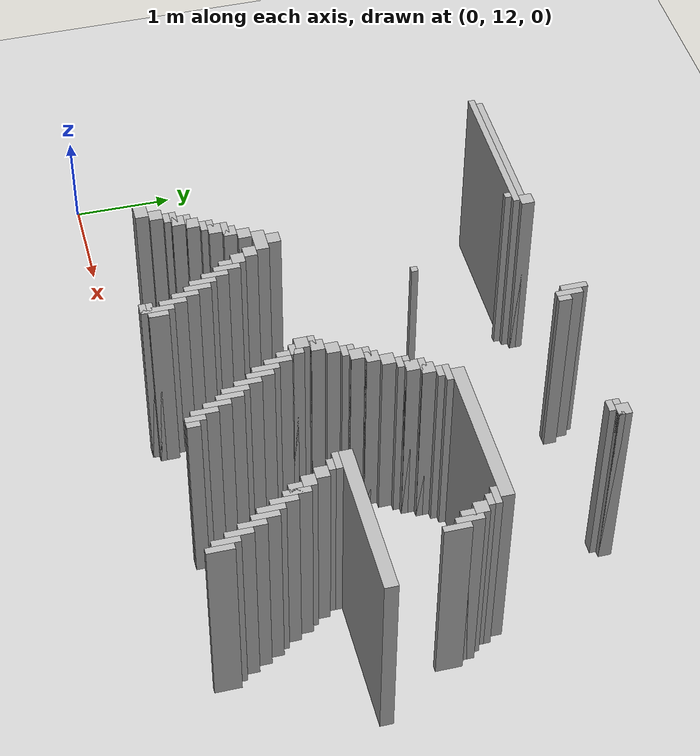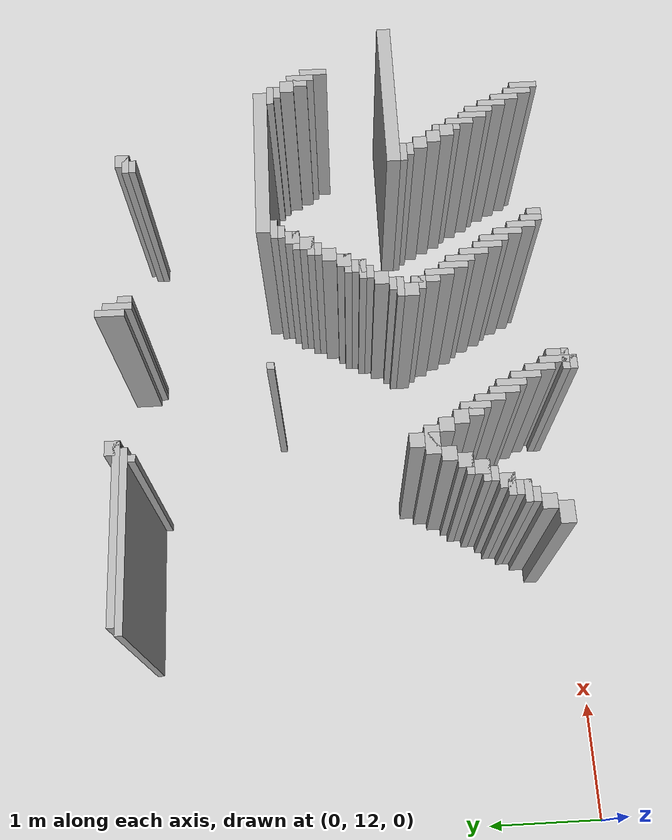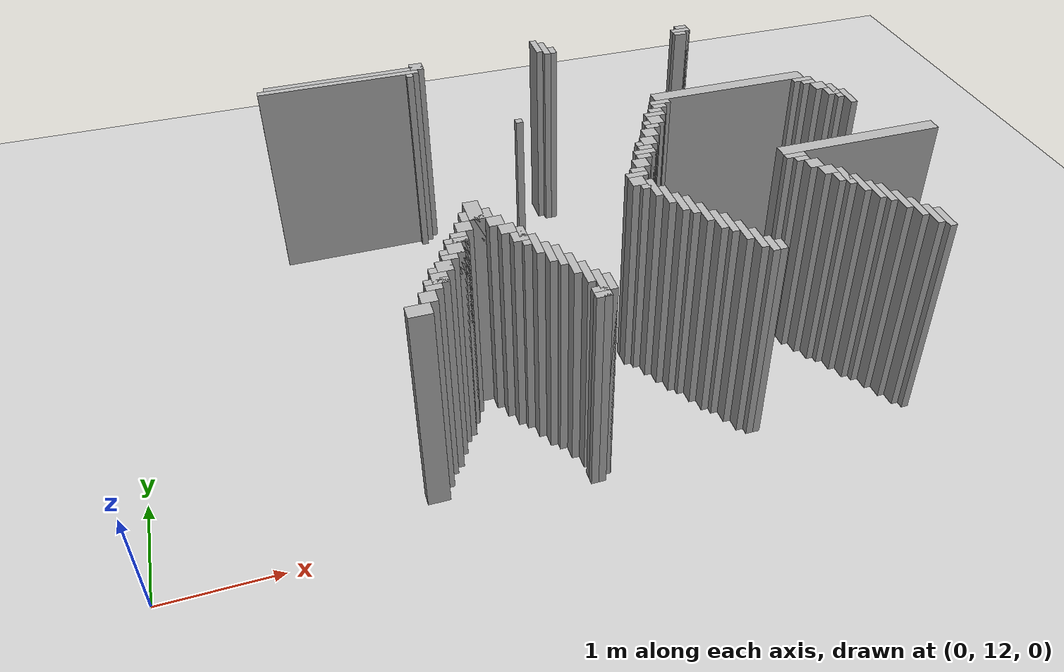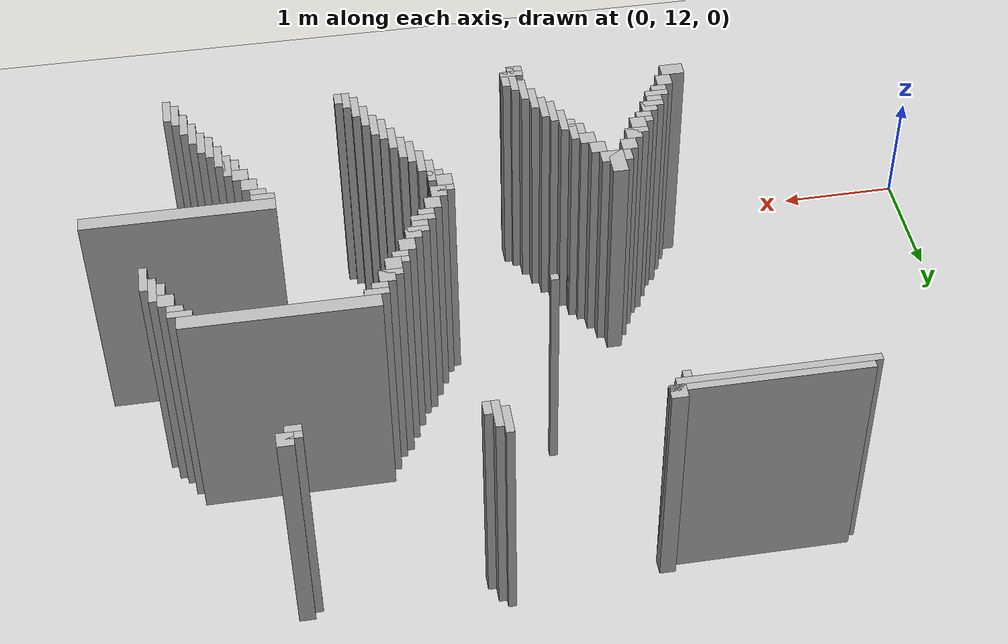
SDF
<sdf version="1.6">
 <world name="slam_world">
  <model name="ground_plane">
   <static>true</static>
   <link name="link">
    <collision name="collision">
     <geometry><plane><normal>0 0 1</normal><size>100 100</size></plane></geometry>
    </collision>
    <visual name="visual">
     <geometry><plane><normal>0 0 1</normal><size>100 100</size></plane></geometry>
     <material>
      <ambient>0.8 0.8 0.8 1</ambient>
      <diffuse>0.8 0.8 0.8 1</diffuse>
      <specular>0.8 0.8 0.8 1</specular>
     </material>
    </visual>
   </link>
  </model>
  <model name="wall_827">
   <static>true</static>
   <pose>4.24468085106383 16.085106382978722 1.0 0 0 0</pose>
   <link name="link">
    <collision name="collision">
     <geometry><box><size>0.06382978723404255 0.2553191489361702 2.0</size></box></geometry>
    </collision>
    <visual name="visual">
     <geometry><box><size>0.06382978723404255 0.2553191489361702 2.0</size></box></geometry>
     <material><ambient>0.5 0.5 0.5 1</ambient><diffuse>0.7 0.7 0.7 1</diffuse></material>
    </visual>
   </link>
  </model>
  <model name="wall_837">
   <static>true</static>
   <pose>4.308510638297872 16.02127659574468 1.0 0 0 0</pose>
   <link name="link">
    <collision name="collision">
     <geometry><box><size>0.06382978723404255 0.2553191489361702 2.0</size></box></geometry>
    </collision>
    <visual name="visual">
     <geometry><box><size>0.06382978723404255 0.2553191489361702 2.0</size></box></geometry>
     <material><ambient>0.5 0.5 0.5 1</ambient><diffuse>0.7 0.7 0.7 1</diffuse></material>
    </visual>
   </link>
  </model>
  <model name="wall_844">
   <static>true</static>
   <pose>2.9999999999999996 16.02127659574468 1.0 0 0 0</pose>
   <link name="link">
    <collision name="collision">
     <geometry><box><size>0.1276595744680851 0.1276595744680851 2.0</size></box></geometry>
    </collision>
    <visual name="visual">
     <geometry><box><size>0.1276595744680851 0.1276595744680851 2.0</size></box></geometry>
     <material><ambient>0.5 0.5 0.5 1</ambient><diffuse>0.7 0.7 0.7 1</diffuse></material>
    </visual>
   </link>
  </model>
  <model name="wall_845">
   <static>true</static>
   <pose>5.8085106382978715 16.02127659574468 1.0 0 0 0</pose>
   <link name="link">
    <collision name="collision">
     <geometry><box><size>0.1276595744680851 0.1276595744680851 2.0</size></box></geometry>
    </collision>
    <visual name="visual">
     <geometry><box><size>0.1276595744680851 0.1276595744680851 2.0</size></box></geometry>
     <material><ambient>0.5 0.5 0.5 1</ambient><diffuse>0.7 0.7 0.7 1</diffuse></material>
    </visual>
   </link>
  </model>
  <model name="wall_851">
   <static>true</static>
   <pose>2.2978723404255317 15.989361702127658 1.0 0 0 0</pose>
   <link name="link">
    <collision name="collision">
     <geometry><box><size>1.5319148936170213 0.06382978723404255 2.0</size></box></geometry>
    </collision>
    <visual name="visual">
     <geometry><box><size>1.5319148936170213 0.06382978723404255 2.0</size></box></geometry>
     <material><ambient>0.5 0.5 0.5 1</ambient><diffuse>0.7 0.7 0.7 1</diffuse></material>
    </visual>
   </link>
  </model>
  <model name="wall_852">
   <static>true</static>
   <pose>4.372340425531915 15.957446808510637 1.0 0 0 0</pose>
   <link name="link">
    <collision name="collision">
     <geometry><box><size>0.06382978723404255 0.1276595744680851 2.0</size></box></geometry>
    </collision>
    <visual name="visual">
     <geometry><box><size>0.06382978723404255 0.1276595744680851 2.0</size></box></geometry>
     <material><ambient>0.5 0.5 0.5 1</ambient><diffuse>0.7 0.7 0.7 1</diffuse></material>
    </visual>
   </link>
  </model>
  <model name="wall_853">
   <static>true</static>
   <pose>5.776595744680851 15.989361702127658 1.0 0 0 0</pose>
   <link name="link">
    <collision name="collision">
     <geometry><box><size>0.19148936170212766 0.06382978723404255 2.0</size></box></geometry>
    </collision>
    <visual name="visual">
     <geometry><box><size>0.19148936170212766 0.06382978723404255 2.0</size></box></geometry>
     <material><ambient>0.5 0.5 0.5 1</ambient><diffuse>0.7 0.7 0.7 1</diffuse></material>
    </visual>
   </link>
  </model>
  <model name="wall_858">
   <static>true</static>
   <pose>2.234042553191489 15.925531914893616 1.0 0 0 0</pose>
   <link name="link">
    <collision name="collision">
     <geometry><box><size>1.5319148936170213 0.06382978723404255 2.0</size></box></geometry>
    </collision>
    <visual name="visual">
     <geometry><box><size>1.5319148936170213 0.06382978723404255 2.0</size></box></geometry>
     <material><ambient>0.5 0.5 0.5 1</ambient><diffuse>0.7 0.7 0.7 1</diffuse></material>
    </visual>
   </link>
  </model>
  <model name="wall_859">
   <static>true</static>
   <pose>5.744680851063829 15.925531914893616 1.0 0 0 0</pose>
   <link name="link">
    <collision name="collision">
     <geometry><box><size>0.1276595744680851 0.06382978723404255 2.0</size></box></geometry>
    </collision>
    <visual name="visual">
     <geometry><box><size>0.1276595744680851 0.06382978723404255 2.0</size></box></geometry>
     <material><ambient>0.5 0.5 0.5 1</ambient><diffuse>0.7 0.7 0.7 1</diffuse></material>
    </visual>
   </link>
  </model>
  <model name="wall_865">
   <static>true</static>
   <pose>2.9042553191489358 15.861702127659573 1.0 0 0 0</pose>
   <link name="link">
    <collision name="collision">
     <geometry><box><size>0.06382978723404255 0.06382978723404255 2.0</size></box></geometry>
    </collision>
    <visual name="visual">
     <geometry><box><size>0.06382978723404255 0.06382978723404255 2.0</size></box></geometry>
     <material><ambient>0.5 0.5 0.5 1</ambient><diffuse>0.7 0.7 0.7 1</diffuse></material>
    </visual>
   </link>
  </model>
  <model name="wall_902">
   <static>true</static>
   <pose>5.744680851063829 14.744680851063828 1.0 0 0 0</pose>
   <link name="link">
    <collision name="collision">
     <geometry><box><size>1.5319148936170213 0.1276595744680851 2.0</size></box></geometry>
    </collision>
    <visual name="visual">
     <geometry><box><size>1.5319148936170213 0.1276595744680851 2.0</size></box></geometry>
     <material><ambient>0.5 0.5 0.5 1</ambient><diffuse>0.7 0.7 0.7 1</diffuse></material>
    </visual>
   </link>
  </model>
  <model name="wall_906">
   <static>true</static>
   <pose>3.6702127659574466 14.712765957446807 1.0 0 0 0</pose>
   <link name="link">
    <collision name="collision">
     <geometry><box><size>0.06382978723404255 0.06382978723404255 2.0</size></box></geometry>
    </collision>
    <visual name="visual">
     <geometry><box><size>0.06382978723404255 0.06382978723404255 2.0</size></box></geometry>
     <material><ambient>0.5 0.5 0.5 1</ambient><diffuse>0.7 0.7 0.7 1</diffuse></material>
    </visual>
   </link>
  </model>
  <model name="wall_909">
   <static>true</static>
   <pose>5.01063829787234 14.648936170212766 1.0 0 0 0</pose>
   <link name="link">
    <collision name="collision">
     <geometry><box><size>0.19148936170212766 0.06382978723404255 2.0</size></box></geometry>
    </collision>
    <visual name="visual">
     <geometry><box><size>0.19148936170212766 0.06382978723404255 2.0</size></box></geometry>
     <material><ambient>0.5 0.5 0.5 1</ambient><diffuse>0.7 0.7 0.7 1</diffuse></material>
    </visual>
   </link>
  </model>
  <model name="wall_910">
   <static>true</static>
   <pose>6.478723404255319 14.648936170212766 1.0 0 0 0</pose>
   <link name="link">
    <collision name="collision">
     <geometry><box><size>0.19148936170212766 0.06382978723404255 2.0</size></box></geometry>
    </collision>
    <visual name="visual">
     <geometry><box><size>0.19148936170212766 0.06382978723404255 2.0</size></box></geometry>
     <material><ambient>0.5 0.5 0.5 1</ambient><diffuse>0.7 0.7 0.7 1</diffuse></material>
    </visual>
   </link>
  </model>
  <model name="wall_917">
   <static>true</static>
   <pose>4.978723404255319 14.585106382978722 1.0 0 0 0</pose>
   <link name="link">
    <collision name="collision">
     <geometry><box><size>0.1276595744680851 0.06382978723404255 2.0</size></box></geometry>
    </collision>
    <visual name="visual">
     <geometry><box><size>0.1276595744680851 0.06382978723404255 2.0</size></box></geometry>
     <material><ambient>0.5 0.5 0.5 1</ambient><diffuse>0.7 0.7 0.7 1</diffuse></material>
    </visual>
   </link>
  </model>
  <model name="wall_918">
   <static>true</static>
   <pose>6.51063829787234 14.585106382978722 1.0 0 0 0</pose>
   <link name="link">
    <collision name="collision">
     <geometry><box><size>0.1276595744680851 0.06382978723404255 2.0</size></box></geometry>
    </collision>
    <visual name="visual">
     <geometry><box><size>0.1276595744680851 0.06382978723404255 2.0</size></box></geometry>
     <material><ambient>0.5 0.5 0.5 1</ambient><diffuse>0.7 0.7 0.7 1</diffuse></material>
    </visual>
   </link>
  </model>
  <model name="wall_924">
   <static>true</static>
   <pose>4.914893617021276 14.489361702127658 1.0 0 0 0</pose>
   <link name="link">
    <collision name="collision">
     <geometry><box><size>0.1276595744680851 0.1276595744680851 2.0</size></box></geometry>
    </collision>
    <visual name="visual">
     <geometry><box><size>0.1276595744680851 0.1276595744680851 2.0</size></box></geometry>
     <material><ambient>0.5 0.5 0.5 1</ambient><diffuse>0.7 0.7 0.7 1</diffuse></material>
    </visual>
   </link>
  </model>
  <model name="wall_925">
   <static>true</static>
   <pose>6.574468085106383 14.489361702127658 1.0 0 0 0</pose>
   <link name="link">
    <collision name="collision">
     <geometry><box><size>0.1276595744680851 0.1276595744680851 2.0</size></box></geometry>
    </collision>
    <visual name="visual">
     <geometry><box><size>0.1276595744680851 0.1276595744680851 2.0</size></box></geometry>
     <material><ambient>0.5 0.5 0.5 1</ambient><diffuse>0.7 0.7 0.7 1</diffuse></material>
    </visual>
   </link>
  </model>
  <model name="wall_931">
   <static>true</static>
   <pose>4.882978723404255 14.457446808510637 1.0 0 0 0</pose>
   <link name="link">
    <collision name="collision">
     <geometry><box><size>0.19148936170212766 0.06382978723404255 2.0</size></box></geometry>
    </collision>
    <visual name="visual">
     <geometry><box><size>0.19148936170212766 0.06382978723404255 2.0</size></box></geometry>
     <material><ambient>0.5 0.5 0.5 1</ambient><diffuse>0.7 0.7 0.7 1</diffuse></material>
    </visual>
   </link>
  </model>
  <model name="wall_932">
   <static>true</static>
   <pose>6.670212765957446 14.361702127659573 1.0 0 0 0</pose>
   <link name="link">
    <collision name="collision">
     <geometry><box><size>0.06382978723404255 0.2553191489361702 2.0</size></box></geometry>
    </collision>
    <visual name="visual">
     <geometry><box><size>0.06382978723404255 0.2553191489361702 2.0</size></box></geometry>
     <material><ambient>0.5 0.5 0.5 1</ambient><diffuse>0.7 0.7 0.7 1</diffuse></material>
    </visual>
   </link>
  </model>
  <model name="wall_938">
   <static>true</static>
   <pose>4.8510638297872335 14.361702127659573 1.0 0 0 0</pose>
   <link name="link">
    <collision name="collision">
     <geometry><box><size>0.1276595744680851 0.1276595744680851 2.0</size></box></geometry>
    </collision>
    <visual name="visual">
     <geometry><box><size>0.1276595744680851 0.1276595744680851 2.0</size></box></geometry>
     <material><ambient>0.5 0.5 0.5 1</ambient><diffuse>0.7 0.7 0.7 1</diffuse></material>
    </visual>
   </link>
  </model>
  <model name="wall_939">
   <static>true</static>
   <pose>6.638297872340425 14.361702127659573 1.0 0 0 0</pose>
   <link name="link">
    <collision name="collision">
     <geometry><box><size>0.1276595744680851 0.1276595744680851 2.0</size></box></geometry>
    </collision>
    <visual name="visual">
     <geometry><box><size>0.1276595744680851 0.1276595744680851 2.0</size></box></geometry>
     <material><ambient>0.5 0.5 0.5 1</ambient><diffuse>0.7 0.7 0.7 1</diffuse></material>
    </visual>
   </link>
  </model>
  <model name="wall_945">
   <static>true</static>
   <pose>4.819148936170213 14.329787234042552 1.0 0 0 0</pose>
   <link name="link">
    <collision name="collision">
     <geometry><box><size>0.19148936170212766 0.06382978723404255 2.0</size></box></geometry>
    </collision>
    <visual name="visual">
     <geometry><box><size>0.19148936170212766 0.06382978723404255 2.0</size></box></geometry>
     <material><ambient>0.5 0.5 0.5 1</ambient><diffuse>0.7 0.7 0.7 1</diffuse></material>
    </visual>
   </link>
  </model>
  <model name="wall_946">
   <static>true</static>
   <pose>6.734042553191489 14.234042553191488 1.0 0 0 0</pose>
   <link name="link">
    <collision name="collision">
     <geometry><box><size>0.06382978723404255 0.2553191489361702 2.0</size></box></geometry>
    </collision>
    <visual name="visual">
     <geometry><box><size>0.06382978723404255 0.2553191489361702 2.0</size></box></geometry>
     <material><ambient>0.5 0.5 0.5 1</ambient><diffuse>0.7 0.7 0.7 1</diffuse></material>
    </visual>
   </link>
  </model>
  <model name="wall_952">
   <static>true</static>
   <pose>4.787234042553191 14.265957446808509 1.0 0 0 0</pose>
   <link name="link">
    <collision name="collision">
     <geometry><box><size>0.1276595744680851 0.06382978723404255 2.0</size></box></geometry>
    </collision>
    <visual name="visual">
     <geometry><box><size>0.1276595744680851 0.06382978723404255 2.0</size></box></geometry>
     <material><ambient>0.5 0.5 0.5 1</ambient><diffuse>0.7 0.7 0.7 1</diffuse></material>
    </visual>
   </link>
  </model>
  <model name="wall_956">
   <static>true</static>
   <pose>4.723404255319148 14.170212765957446 1.0 0 0 0</pose>
   <link name="link">
    <collision name="collision">
     <geometry><box><size>0.1276595744680851 0.1276595744680851 2.0</size></box></geometry>
    </collision>
    <visual name="visual">
     <geometry><box><size>0.1276595744680851 0.1276595744680851 2.0</size></box></geometry>
     <material><ambient>0.5 0.5 0.5 1</ambient><diffuse>0.7 0.7 0.7 1</diffuse></material>
    </visual>
   </link>
  </model>
  <model name="wall_963">
   <static>true</static>
   <pose>4.659574468085106 14.042553191489361 1.0 0 0 0</pose>
   <link name="link">
    <collision name="collision">
     <geometry><box><size>0.1276595744680851 0.1276595744680851 2.0</size></box></geometry>
    </collision>
    <visual name="visual">
     <geometry><box><size>0.1276595744680851 0.1276595744680851 2.0</size></box></geometry>
     <material><ambient>0.5 0.5 0.5 1</ambient><diffuse>0.7 0.7 0.7 1</diffuse></material>
    </visual>
   </link>
  </model>
  <model name="wall_970">
   <static>true</static>
   <pose>4.627659574468085 14.010638297872338 1.0 0 0 0</pose>
   <link name="link">
    <collision name="collision">
     <geometry><box><size>0.19148936170212766 0.06382978723404255 2.0</size></box></geometry>
    </collision>
    <visual name="visual">
     <geometry><box><size>0.19148936170212766 0.06382978723404255 2.0</size></box></geometry>
     <material><ambient>0.5 0.5 0.5 1</ambient><diffuse>0.7 0.7 0.7 1</diffuse></material>
    </visual>
   </link>
  </model>
  <model name="wall_977">
   <static>true</static>
   <pose>4.595744680851063 13.914893617021276 1.0 0 0 0</pose>
   <link name="link">
    <collision name="collision">
     <geometry><box><size>0.1276595744680851 0.1276595744680851 2.0</size></box></geometry>
    </collision>
    <visual name="visual">
     <geometry><box><size>0.1276595744680851 0.1276595744680851 2.0</size></box></geometry>
     <material><ambient>0.5 0.5 0.5 1</ambient><diffuse>0.7 0.7 0.7 1</diffuse></material>
    </visual>
   </link>
  </model>
  <model name="wall_981">
   <static>true</static>
   <pose>4.5638297872340425 13.882978723404253 1.0 0 0 0</pose>
   <link name="link">
    <collision name="collision">
     <geometry><box><size>0.19148936170212766 0.06382978723404255 2.0</size></box></geometry>
    </collision>
    <visual name="visual">
     <geometry><box><size>0.19148936170212766 0.06382978723404255 2.0</size></box></geometry>
     <material><ambient>0.5 0.5 0.5 1</ambient><diffuse>0.7 0.7 0.7 1</diffuse></material>
    </visual>
   </link>
  </model>
  <model name="wall_988">
   <static>true</static>
   <pose>4.531914893617021 13.819148936170212 1.0 0 0 0</pose>
   <link name="link">
    <collision name="collision">
     <geometry><box><size>0.1276595744680851 0.06382978723404255 2.0</size></box></geometry>
    </collision>
    <visual name="visual">
     <geometry><box><size>0.1276595744680851 0.06382978723404255 2.0</size></box></geometry>
     <material><ambient>0.5 0.5 0.5 1</ambient><diffuse>0.7 0.7 0.7 1</diffuse></material>
    </visual>
   </link>
  </model>
  <model name="wall_992">
   <static>true</static>
   <pose>4.468085106382978 13.723404255319148 1.0 0 0 0</pose>
   <link name="link">
    <collision name="collision">
     <geometry><box><size>0.1276595744680851 0.1276595744680851 2.0</size></box></geometry>
    </collision>
    <visual name="visual">
     <geometry><box><size>0.1276595744680851 0.1276595744680851 2.0</size></box></geometry>
     <material><ambient>0.5 0.5 0.5 1</ambient><diffuse>0.7 0.7 0.7 1</diffuse></material>
    </visual>
   </link>
  </model>
  <model name="wall_999">
   <static>true</static>
   <pose>4.404255319148936 13.595744680851062 1.0 0 0 0</pose>
   <link name="link">
    <collision name="collision">
     <geometry><box><size>0.1276595744680851 0.1276595744680851 2.0</size></box></geometry>
    </collision>
    <visual name="visual">
     <geometry><box><size>0.1276595744680851 0.1276595744680851 2.0</size></box></geometry>
     <material><ambient>0.5 0.5 0.5 1</ambient><diffuse>0.7 0.7 0.7 1</diffuse></material>
    </visual>
   </link>
  </model>
  <model name="wall_1005">
   <static>true</static>
   <pose>2.936170212765957 13.468085106382977 1.0 0 0 0</pose>
   <link name="link">
    <collision name="collision">
     <geometry><box><size>0.1276595744680851 0.2553191489361702 2.0</size></box></geometry>
    </collision>
    <visual name="visual">
     <geometry><box><size>0.1276595744680851 0.2553191489361702 2.0</size></box></geometry>
     <material><ambient>0.5 0.5 0.5 1</ambient><diffuse>0.7 0.7 0.7 1</diffuse></material>
    </visual>
   </link>
  </model>
  <model name="wall_1006">
   <static>true</static>
   <pose>4.372340425531915 13.563829787234042 1.0 0 0 0</pose>
   <link name="link">
    <collision name="collision">
     <geometry><box><size>0.19148936170212766 0.06382978723404255 2.0</size></box></geometry>
    </collision>
    <visual name="visual">
     <geometry><box><size>0.19148936170212766 0.06382978723404255 2.0</size></box></geometry>
     <material><ambient>0.5 0.5 0.5 1</ambient><diffuse>0.7 0.7 0.7 1</diffuse></material>
    </visual>
   </link>
  </model>
  <model name="wall_1007">
   <static>true</static>
   <pose>6.446808510638298 13.53191489361702 1.0 0 0 0</pose>
   <link name="link">
    <collision name="collision">
     <geometry><box><size>1.5319148936170213 0.1276595744680851 2.0</size></box></geometry>
    </collision>
    <visual name="visual">
     <geometry><box><size>1.5319148936170213 0.1276595744680851 2.0</size></box></geometry>
     <material><ambient>0.5 0.5 0.5 1</ambient><diffuse>0.7 0.7 0.7 1</diffuse></material>
    </visual>
   </link>
  </model>
  <model name="wall_1012">
   <static>true</static>
   <pose>4.340425531914893 13.468085106382977 1.0 0 0 0</pose>
   <link name="link">
    <collision name="collision">
     <geometry><box><size>0.1276595744680851 0.1276595744680851 2.0</size></box></geometry>
    </collision>
    <visual name="visual">
     <geometry><box><size>0.1276595744680851 0.1276595744680851 2.0</size></box></geometry>
     <material><ambient>0.5 0.5 0.5 1</ambient><diffuse>0.7 0.7 0.7 1</diffuse></material>
    </visual>
   </link>
  </model>
  <model name="wall_1019">
   <static>true</static>
   <pose>2.936170212765957 13.404255319148936 1.0 0 0 0</pose>
   <link name="link">
    <collision name="collision">
     <geometry><box><size>0.2553191489361702 0.1276595744680851 2.0</size></box></geometry>
    </collision>
    <visual name="visual">
     <geometry><box><size>0.2553191489361702 0.1276595744680851 2.0</size></box></geometry>
     <material><ambient>0.5 0.5 0.5 1</ambient><diffuse>0.7 0.7 0.7 1</diffuse></material>
    </visual>
   </link>
  </model>
  <model name="wall_1020">
   <static>true</static>
   <pose>4.4361702127659575 13.340425531914892 1.0 0 0 0</pose>
   <link name="link">
    <collision name="collision">
     <geometry><box><size>0.06382978723404255 0.2553191489361702 2.0</size></box></geometry>
    </collision>
    <visual name="visual">
     <geometry><box><size>0.06382978723404255 0.2553191489361702 2.0</size></box></geometry>
     <material><ambient>0.5 0.5 0.5 1</ambient><diffuse>0.7 0.7 0.7 1</diffuse></material>
    </visual>
   </link>
  </model>
  <model name="wall_1021">
   <static>true</static>
   <pose>5.776595744680851 13.436170212765957 1.0 0 0 0</pose>
   <link name="link">
    <collision name="collision">
     <geometry><box><size>0.19148936170212766 0.06382978723404255 2.0</size></box></geometry>
    </collision>
    <visual name="visual">
     <geometry><box><size>0.19148936170212766 0.06382978723404255 2.0</size></box></geometry>
     <material><ambient>0.5 0.5 0.5 1</ambient><diffuse>0.7 0.7 0.7 1</diffuse></material>
    </visual>
   </link>
  </model>
  <model name="wall_1028">
   <static>true</static>
   <pose>4.404255319148936 13.372340425531913 1.0 0 0 0</pose>
   <link name="link">
    <collision name="collision">
     <geometry><box><size>0.1276595744680851 0.06382978723404255 2.0</size></box></geometry>
    </collision>
    <visual name="visual">
     <geometry><box><size>0.1276595744680851 0.06382978723404255 2.0</size></box></geometry>
     <material><ambient>0.5 0.5 0.5 1</ambient><diffuse>0.7 0.7 0.7 1</diffuse></material>
    </visual>
   </link>
  </model>
  <model name="wall_1029">
   <static>true</static>
   <pose>5.8085106382978715 13.372340425531913 1.0 0 0 0</pose>
   <link name="link">
    <collision name="collision">
     <geometry><box><size>0.1276595744680851 0.06382978723404255 2.0</size></box></geometry>
    </collision>
    <visual name="visual">
     <geometry><box><size>0.1276595744680851 0.06382978723404255 2.0</size></box></geometry>
     <material><ambient>0.5 0.5 0.5 1</ambient><diffuse>0.7 0.7 0.7 1</diffuse></material>
    </visual>
   </link>
  </model>
  <model name="wall_1035">
   <static>true</static>
   <pose>2.808510638297872 13.27659574468085 1.0 0 0 0</pose>
   <link name="link">
    <collision name="collision">
     <geometry><box><size>0.1276595744680851 0.1276595744680851 2.0</size></box></geometry>
    </collision>
    <visual name="visual">
     <geometry><box><size>0.1276595744680851 0.1276595744680851 2.0</size></box></geometry>
     <material><ambient>0.5 0.5 0.5 1</ambient><diffuse>0.7 0.7 0.7 1</diffuse></material>
    </visual>
   </link>
  </model>
  <model name="wall_1036">
   <static>true</static>
   <pose>3.0638297872340425 13.27659574468085 1.0 0 0 0</pose>
   <link name="link">
    <collision name="collision">
     <geometry><box><size>0.1276595744680851 0.1276595744680851 2.0</size></box></geometry>
    </collision>
    <visual name="visual">
     <geometry><box><size>0.1276595744680851 0.1276595744680851 2.0</size></box></geometry>
     <material><ambient>0.5 0.5 0.5 1</ambient><diffuse>0.7 0.7 0.7 1</diffuse></material>
    </visual>
   </link>
  </model>
  <model name="wall_1037">
   <static>true</static>
   <pose>4.5 13.212765957446807 1.0 0 0 0</pose>
   <link name="link">
    <collision name="collision">
     <geometry><box><size>0.06382978723404255 0.2553191489361702 2.0</size></box></geometry>
    </collision>
    <visual name="visual">
     <geometry><box><size>0.06382978723404255 0.2553191489361702 2.0</size></box></geometry>
     <material><ambient>0.5 0.5 0.5 1</ambient><diffuse>0.7 0.7 0.7 1</diffuse></material>
    </visual>
   </link>
  </model>
  <model name="wall_1038">
   <static>true</static>
   <pose>5.872340425531914 13.27659574468085 1.0 0 0 0</pose>
   <link name="link">
    <collision name="collision">
     <geometry><box><size>0.1276595744680851 0.1276595744680851 2.0</size></box></geometry>
    </collision>
    <visual name="visual">
     <geometry><box><size>0.1276595744680851 0.1276595744680851 2.0</size></box></geometry>
     <material><ambient>0.5 0.5 0.5 1</ambient><diffuse>0.7 0.7 0.7 1</diffuse></material>
    </visual>
   </link>
  </model>
  <model name="wall_1045">
   <static>true</static>
   <pose>2.7446808510638294 13.148936170212766 1.0 0 0 0</pose>
   <link name="link">
    <collision name="collision">
     <geometry><box><size>0.1276595744680851 0.1276595744680851 2.0</size></box></geometry>
    </collision>
    <visual name="visual">
     <geometry><box><size>0.1276595744680851 0.1276595744680851 2.0</size></box></geometry>
     <material><ambient>0.5 0.5 0.5 1</ambient><diffuse>0.7 0.7 0.7 1</diffuse></material>
    </visual>
   </link>
  </model>
  <model name="wall_1046">
   <static>true</static>
   <pose>3.127659574468085 13.148936170212766 1.0 0 0 0</pose>
   <link name="link">
    <collision name="collision">
     <geometry><box><size>0.1276595744680851 0.1276595744680851 2.0</size></box></geometry>
    </collision>
    <visual name="visual">
     <geometry><box><size>0.1276595744680851 0.1276595744680851 2.0</size></box></geometry>
     <material><ambient>0.5 0.5 0.5 1</ambient><diffuse>0.7 0.7 0.7 1</diffuse></material>
    </visual>
   </link>
  </model>
  <model name="wall_1047">
   <static>true</static>
   <pose>4.5638297872340425 13.085106382978722 1.0 0 0 0</pose>
   <link name="link">
    <collision name="collision">
     <geometry><box><size>0.06382978723404255 0.2553191489361702 2.0</size></box></geometry>
    </collision>
    <visual name="visual">
     <geometry><box><size>0.06382978723404255 0.2553191489361702 2.0</size></box></geometry>
     <material><ambient>0.5 0.5 0.5 1</ambient><diffuse>0.7 0.7 0.7 1</diffuse></material>
    </visual>
   </link>
  </model>
  <model name="wall_1048">
   <static>true</static>
   <pose>5.936170212765957 13.148936170212766 1.0 0 0 0</pose>
   <link name="link">
    <collision name="collision">
     <geometry><box><size>0.1276595744680851 0.1276595744680851 2.0</size></box></geometry>
    </collision>
    <visual name="visual">
     <geometry><box><size>0.1276595744680851 0.1276595744680851 2.0</size></box></geometry>
     <material><ambient>0.5 0.5 0.5 1</ambient><diffuse>0.7 0.7 0.7 1</diffuse></material>
    </visual>
   </link>
  </model>
  <model name="wall_1055">
   <static>true</static>
   <pose>2.712765957446808 13.117021276595743 1.0 0 0 0</pose>
   <link name="link">
    <collision name="collision">
     <geometry><box><size>0.19148936170212766 0.06382978723404255 2.0</size></box></geometry>
    </collision>
    <visual name="visual">
     <geometry><box><size>0.19148936170212766 0.06382978723404255 2.0</size></box></geometry>
     <material><ambient>0.5 0.5 0.5 1</ambient><diffuse>0.7 0.7 0.7 1</diffuse></material>
    </visual>
   </link>
  </model>
  <model name="wall_1056">
   <static>true</static>
   <pose>3.223404255319149 13.02127659574468 1.0 0 0 0</pose>
   <link name="link">
    <collision name="collision">
     <geometry><box><size>0.06382978723404255 0.2553191489361702 2.0</size></box></geometry>
    </collision>
    <visual name="visual">
     <geometry><box><size>0.06382978723404255 0.2553191489361702 2.0</size></box></geometry>
     <material><ambient>0.5 0.5 0.5 1</ambient><diffuse>0.7 0.7 0.7 1</diffuse></material>
    </visual>
   </link>
  </model>
  <model name="wall_1057">
   <static>true</static>
   <pose>4.627659574468085 13.02127659574468 1.0 0 0 0</pose>
   <link name="link">
    <collision name="collision">
     <geometry><box><size>0.06382978723404255 0.2553191489361702 2.0</size></box></geometry>
    </collision>
    <visual name="visual">
     <geometry><box><size>0.06382978723404255 0.2553191489361702 2.0</size></box></geometry>
     <material><ambient>0.5 0.5 0.5 1</ambient><diffuse>0.7 0.7 0.7 1</diffuse></material>
    </visual>
   </link>
  </model>
  <model name="wall_1058">
   <static>true</static>
   <pose>6.031914893617021 13.02127659574468 1.0 0 0 0</pose>
   <link name="link">
    <collision name="collision">
     <geometry><box><size>0.06382978723404255 0.2553191489361702 2.0</size></box></geometry>
    </collision>
    <visual name="visual">
     <geometry><box><size>0.06382978723404255 0.2553191489361702 2.0</size></box></geometry>
     <material><ambient>0.5 0.5 0.5 1</ambient><diffuse>0.7 0.7 0.7 1</diffuse></material>
    </visual>
   </link>
  </model>
  <model name="wall_1063">
   <static>true</static>
   <pose>2.680851063829787 13.02127659574468 1.0 0 0 0</pose>
   <link name="link">
    <collision name="collision">
     <geometry><box><size>0.1276595744680851 0.1276595744680851 2.0</size></box></geometry>
    </collision>
    <visual name="visual">
     <geometry><box><size>0.1276595744680851 0.1276595744680851 2.0</size></box></geometry>
     <material><ambient>0.5 0.5 0.5 1</ambient><diffuse>0.7 0.7 0.7 1</diffuse></material>
    </visual>
   </link>
  </model>
  <model name="wall_1064">
   <static>true</static>
   <pose>3.1914893617021276 13.02127659574468 1.0 0 0 0</pose>
   <link name="link">
    <collision name="collision">
     <geometry><box><size>0.1276595744680851 0.1276595744680851 2.0</size></box></geometry>
    </collision>
    <visual name="visual">
     <geometry><box><size>0.1276595744680851 0.1276595744680851 2.0</size></box></geometry>
     <material><ambient>0.5 0.5 0.5 1</ambient><diffuse>0.7 0.7 0.7 1</diffuse></material>
    </visual>
   </link>
  </model>
  <model name="wall_1065">
   <static>true</static>
   <pose>5.999999999999999 13.02127659574468 1.0 0 0 0</pose>
   <link name="link">
    <collision name="collision">
     <geometry><box><size>0.1276595744680851 0.1276595744680851 2.0</size></box></geometry>
    </collision>
    <visual name="visual">
     <geometry><box><size>0.1276595744680851 0.1276595744680851 2.0</size></box></geometry>
     <material><ambient>0.5 0.5 0.5 1</ambient><diffuse>0.7 0.7 0.7 1</diffuse></material>
    </visual>
   </link>
  </model>
  <model name="wall_1069">
   <static>true</static>
   <pose>2.6489361702127656 12.989361702127658 1.0 0 0 0</pose>
   <link name="link">
    <collision name="collision">
     <geometry><box><size>0.19148936170212766 0.06382978723404255 2.0</size></box></geometry>
    </collision>
    <visual name="visual">
     <geometry><box><size>0.19148936170212766 0.06382978723404255 2.0</size></box></geometry>
     <material><ambient>0.5 0.5 0.5 1</ambient><diffuse>0.7 0.7 0.7 1</diffuse></material>
    </visual>
   </link>
  </model>
  <model name="wall_1070">
   <static>true</static>
   <pose>3.2872340425531914 12.893617021276595 1.0 0 0 0</pose>
   <link name="link">
    <collision name="collision">
     <geometry><box><size>0.06382978723404255 0.2553191489361702 2.0</size></box></geometry>
    </collision>
    <visual name="visual">
     <geometry><box><size>0.06382978723404255 0.2553191489361702 2.0</size></box></geometry>
     <material><ambient>0.5 0.5 0.5 1</ambient><diffuse>0.7 0.7 0.7 1</diffuse></material>
    </visual>
   </link>
  </model>
  <model name="wall_1071">
   <static>true</static>
   <pose>4.691489361702128 12.893617021276595 1.0 0 0 0</pose>
   <link name="link">
    <collision name="collision">
     <geometry><box><size>0.06382978723404255 0.2553191489361702 2.0</size></box></geometry>
    </collision>
    <visual name="visual">
     <geometry><box><size>0.06382978723404255 0.2553191489361702 2.0</size></box></geometry>
     <material><ambient>0.5 0.5 0.5 1</ambient><diffuse>0.7 0.7 0.7 1</diffuse></material>
    </visual>
   </link>
  </model>
  <model name="wall_1072">
   <static>true</static>
   <pose>6.095744680851063 12.893617021276595 1.0 0 0 0</pose>
   <link name="link">
    <collision name="collision">
     <geometry><box><size>0.06382978723404255 0.2553191489361702 2.0</size></box></geometry>
    </collision>
    <visual name="visual">
     <geometry><box><size>0.06382978723404255 0.2553191489361702 2.0</size></box></geometry>
     <material><ambient>0.5 0.5 0.5 1</ambient><diffuse>0.7 0.7 0.7 1</diffuse></material>
    </visual>
   </link>
  </model>
  <model name="wall_1077">
   <static>true</static>
   <pose>2.6170212765957444 12.925531914893616 1.0 0 0 0</pose>
   <link name="link">
    <collision name="collision">
     <geometry><box><size>0.1276595744680851 0.06382978723404255 2.0</size></box></geometry>
    </collision>
    <visual name="visual">
     <geometry><box><size>0.1276595744680851 0.06382978723404255 2.0</size></box></geometry>
     <material><ambient>0.5 0.5 0.5 1</ambient><diffuse>0.7 0.7 0.7 1</diffuse></material>
    </visual>
   </link>
  </model>
  <model name="wall_1081">
   <static>true</static>
   <pose>2.553191489361702 12.829787234042552 1.0 0 0 0</pose>
   <link name="link">
    <collision name="collision">
     <geometry><box><size>0.1276595744680851 0.1276595744680851 2.0</size></box></geometry>
    </collision>
    <visual name="visual">
     <geometry><box><size>0.1276595744680851 0.1276595744680851 2.0</size></box></geometry>
     <material><ambient>0.5 0.5 0.5 1</ambient><diffuse>0.7 0.7 0.7 1</diffuse></material>
    </visual>
   </link>
  </model>
  <model name="wall_1082">
   <static>true</static>
   <pose>3.351063829787234 12.76595744680851 1.0 0 0 0</pose>
   <link name="link">
    <collision name="collision">
     <geometry><box><size>0.06382978723404255 0.2553191489361702 2.0</size></box></geometry>
    </collision>
    <visual name="visual">
     <geometry><box><size>0.06382978723404255 0.2553191489361702 2.0</size></box></geometry>
     <material><ambient>0.5 0.5 0.5 1</ambient><diffuse>0.7 0.7 0.7 1</diffuse></material>
    </visual>
   </link>
  </model>
  <model name="wall_1083">
   <static>true</static>
   <pose>4.75531914893617 12.76595744680851 1.0 0 0 0</pose>
   <link name="link">
    <collision name="collision">
     <geometry><box><size>0.06382978723404255 0.2553191489361702 2.0</size></box></geometry>
    </collision>
    <visual name="visual">
     <geometry><box><size>0.06382978723404255 0.2553191489361702 2.0</size></box></geometry>
     <material><ambient>0.5 0.5 0.5 1</ambient><diffuse>0.7 0.7 0.7 1</diffuse></material>
    </visual>
   </link>
  </model>
  <model name="wall_1084">
   <static>true</static>
   <pose>6.159574468085106 12.76595744680851 1.0 0 0 0</pose>
   <link name="link">
    <collision name="collision">
     <geometry><box><size>0.06382978723404255 0.2553191489361702 2.0</size></box></geometry>
    </collision>
    <visual name="visual">
     <geometry><box><size>0.06382978723404255 0.2553191489361702 2.0</size></box></geometry>
     <material><ambient>0.5 0.5 0.5 1</ambient><diffuse>0.7 0.7 0.7 1</diffuse></material>
    </visual>
   </link>
  </model>
  <model name="wall_1091">
   <static>true</static>
   <pose>2.5212765957446805 12.797872340425531 1.0 0 0 0</pose>
   <link name="link">
    <collision name="collision">
     <geometry><box><size>0.19148936170212766 0.06382978723404255 2.0</size></box></geometry>
    </collision>
    <visual name="visual">
     <geometry><box><size>0.19148936170212766 0.06382978723404255 2.0</size></box></geometry>
     <material><ambient>0.5 0.5 0.5 1</ambient><diffuse>0.7 0.7 0.7 1</diffuse></material>
    </visual>
   </link>
  </model>
  <model name="wall_1092">
   <static>true</static>
   <pose>3.4148936170212765 12.702127659574467 1.0 0 0 0</pose>
   <link name="link">
    <collision name="collision">
     <geometry><box><size>0.06382978723404255 0.2553191489361702 2.0</size></box></geometry>
    </collision>
    <visual name="visual">
     <geometry><box><size>0.06382978723404255 0.2553191489361702 2.0</size></box></geometry>
     <material><ambient>0.5 0.5 0.5 1</ambient><diffuse>0.7 0.7 0.7 1</diffuse></material>
    </visual>
   </link>
  </model>
  <model name="wall_1093">
   <static>true</static>
   <pose>4.819148936170213 12.702127659574467 1.0 0 0 0</pose>
   <link name="link">
    <collision name="collision">
     <geometry><box><size>0.06382978723404255 0.2553191489361702 2.0</size></box></geometry>
    </collision>
    <visual name="visual">
     <geometry><box><size>0.06382978723404255 0.2553191489361702 2.0</size></box></geometry>
     <material><ambient>0.5 0.5 0.5 1</ambient><diffuse>0.7 0.7 0.7 1</diffuse></material>
    </visual>
   </link>
  </model>
  <model name="wall_1094">
   <static>true</static>
   <pose>6.223404255319148 12.702127659574467 1.0 0 0 0</pose>
   <link name="link">
    <collision name="collision">
     <geometry><box><size>0.06382978723404255 0.2553191489361702 2.0</size></box></geometry>
    </collision>
    <visual name="visual">
     <geometry><box><size>0.06382978723404255 0.2553191489361702 2.0</size></box></geometry>
     <material><ambient>0.5 0.5 0.5 1</ambient><diffuse>0.7 0.7 0.7 1</diffuse></material>
    </visual>
   </link>
  </model>
  <model name="wall_1099">
   <static>true</static>
   <pose>2.4893617021276593 12.702127659574467 1.0 0 0 0</pose>
   <link name="link">
    <collision name="collision">
     <geometry><box><size>0.1276595744680851 0.1276595744680851 2.0</size></box></geometry>
    </collision>
    <visual name="visual">
     <geometry><box><size>0.1276595744680851 0.1276595744680851 2.0</size></box></geometry>
     <material><ambient>0.5 0.5 0.5 1</ambient><diffuse>0.7 0.7 0.7 1</diffuse></material>
    </visual>
   </link>
  </model>
  <model name="wall_1103">
   <static>true</static>
   <pose>2.457446808510638 12.670212765957446 1.0 0 0 0</pose>
   <link name="link">
    <collision name="collision">
     <geometry><box><size>0.19148936170212766 0.06382978723404255 2.0</size></box></geometry>
    </collision>
    <visual name="visual">
     <geometry><box><size>0.19148936170212766 0.06382978723404255 2.0</size></box></geometry>
     <material><ambient>0.5 0.5 0.5 1</ambient><diffuse>0.7 0.7 0.7 1</diffuse></material>
    </visual>
   </link>
  </model>
  <model name="wall_1104">
   <static>true</static>
   <pose>3.478723404255319 12.574468085106382 1.0 0 0 0</pose>
   <link name="link">
    <collision name="collision">
     <geometry><box><size>0.06382978723404255 0.2553191489361702 2.0</size></box></geometry>
    </collision>
    <visual name="visual">
     <geometry><box><size>0.06382978723404255 0.2553191489361702 2.0</size></box></geometry>
     <material><ambient>0.5 0.5 0.5 1</ambient><diffuse>0.7 0.7 0.7 1</diffuse></material>
    </visual>
   </link>
  </model>
  <model name="wall_1105">
   <static>true</static>
   <pose>4.882978723404255 12.574468085106382 1.0 0 0 0</pose>
   <link name="link">
    <collision name="collision">
     <geometry><box><size>0.06382978723404255 0.2553191489361702 2.0</size></box></geometry>
    </collision>
    <visual name="visual">
     <geometry><box><size>0.06382978723404255 0.2553191489361702 2.0</size></box></geometry>
     <material><ambient>0.5 0.5 0.5 1</ambient><diffuse>0.7 0.7 0.7 1</diffuse></material>
    </visual>
   </link>
  </model>
  <model name="wall_1106">
   <static>true</static>
   <pose>6.287234042553191 12.574468085106382 1.0 0 0 0</pose>
   <link name="link">
    <collision name="collision">
     <geometry><box><size>0.06382978723404255 0.2553191489361702 2.0</size></box></geometry>
    </collision>
    <visual name="visual">
     <geometry><box><size>0.06382978723404255 0.2553191489361702 2.0</size></box></geometry>
     <material><ambient>0.5 0.5 0.5 1</ambient><diffuse>0.7 0.7 0.7 1</diffuse></material>
    </visual>
   </link>
  </model>
  <model name="wall_1111">
   <static>true</static>
   <pose>2.4255319148936167 12.606382978723403 1.0 0 0 0</pose>
   <link name="link">
    <collision name="collision">
     <geometry><box><size>0.1276595744680851 0.06382978723404255 2.0</size></box></geometry>
    </collision>
    <visual name="visual">
     <geometry><box><size>0.1276595744680851 0.06382978723404255 2.0</size></box></geometry>
     <material><ambient>0.5 0.5 0.5 1</ambient><diffuse>0.7 0.7 0.7 1</diffuse></material>
    </visual>
   </link>
  </model>
  <model name="wall_1115">
   <static>true</static>
   <pose>2.361702127659574 12.51063829787234 1.0 0 0 0</pose>
   <link name="link">
    <collision name="collision">
     <geometry><box><size>0.1276595744680851 0.1276595744680851 2.0</size></box></geometry>
    </collision>
    <visual name="visual">
     <geometry><box><size>0.1276595744680851 0.1276595744680851 2.0</size></box></geometry>
     <material><ambient>0.5 0.5 0.5 1</ambient><diffuse>0.7 0.7 0.7 1</diffuse></material>
    </visual>
   </link>
  </model>
  <model name="wall_1116">
   <static>true</static>
   <pose>3.5425531914893615 12.446808510638297 1.0 0 0 0</pose>
   <link name="link">
    <collision name="collision">
     <geometry><box><size>0.06382978723404255 0.2553191489361702 2.0</size></box></geometry>
    </collision>
    <visual name="visual">
     <geometry><box><size>0.06382978723404255 0.2553191489361702 2.0</size></box></geometry>
     <material><ambient>0.5 0.5 0.5 1</ambient><diffuse>0.7 0.7 0.7 1</diffuse></material>
    </visual>
   </link>
  </model>
  <model name="wall_1117">
   <static>true</static>
   <pose>4.946808510638298 12.446808510638297 1.0 0 0 0</pose>
   <link name="link">
    <collision name="collision">
     <geometry><box><size>0.06382978723404255 0.2553191489361702 2.0</size></box></geometry>
    </collision>
    <visual name="visual">
     <geometry><box><size>0.06382978723404255 0.2553191489361702 2.0</size></box></geometry>
     <material><ambient>0.5 0.5 0.5 1</ambient><diffuse>0.7 0.7 0.7 1</diffuse></material>
    </visual>
   </link>
  </model>
  <model name="wall_1118">
   <static>true</static>
   <pose>6.3510638297872335 12.446808510638297 1.0 0 0 0</pose>
   <link name="link">
    <collision name="collision">
     <geometry><box><size>0.06382978723404255 0.2553191489361702 2.0</size></box></geometry>
    </collision>
    <visual name="visual">
     <geometry><box><size>0.06382978723404255 0.2553191489361702 2.0</size></box></geometry>
     <material><ambient>0.5 0.5 0.5 1</ambient><diffuse>0.7 0.7 0.7 1</diffuse></material>
    </visual>
   </link>
  </model>
  <model name="wall_1124">
   <static>true</static>
   <pose>2.2659574468085104 12.382978723404255 1.0 0 0 0</pose>
   <link name="link">
    <collision name="collision">
     <geometry><box><size>0.19148936170212766 0.1276595744680851 2.0</size></box></geometry>
    </collision>
    <visual name="visual">
     <geometry><box><size>0.19148936170212766 0.1276595744680851 2.0</size></box></geometry>
     <material><ambient>0.5 0.5 0.5 1</ambient><diffuse>0.7 0.7 0.7 1</diffuse></material>
    </visual>
   </link>
  </model>
  <model name="wall_1125">
   <static>true</static>
   <pose>3.606382978723404 12.287234042553191 1.0 0 0 0</pose>
   <link name="link">
    <collision name="collision">
     <geometry><box><size>0.06382978723404255 0.3191489361702127 2.0</size></box></geometry>
    </collision>
    <visual name="visual">
     <geometry><box><size>0.06382978723404255 0.3191489361702127 2.0</size></box></geometry>
     <material><ambient>0.5 0.5 0.5 1</ambient><diffuse>0.7 0.7 0.7 1</diffuse></material>
    </visual>
   </link>
  </model>
  <model name="wall_1126">
   <static>true</static>
   <pose>5.01063829787234 12.351063829787233 1.0 0 0 0</pose>
   <link name="link">
    <collision name="collision">
     <geometry><box><size>0.06382978723404255 0.19148936170212766 2.0</size></box></geometry>
    </collision>
    <visual name="visual">
     <geometry><box><size>0.06382978723404255 0.19148936170212766 2.0</size></box></geometry>
     <material><ambient>0.5 0.5 0.5 1</ambient><diffuse>0.7 0.7 0.7 1</diffuse></material>
    </visual>
   </link>
  </model>
  <model name="wall_1127">
   <static>true</static>
   <pose>6.414893617021276 12.319148936170212 1.0 0 0 0</pose>
   <link name="link">
    <collision name="collision">
     <geometry><box><size>0.06382978723404255 0.2553191489361702 2.0</size></box></geometry>
    </collision>
    <visual name="visual">
     <geometry><box><size>0.06382978723404255 0.2553191489361702 2.0</size></box></geometry>
     <material><ambient>0.5 0.5 0.5 1</ambient><diffuse>0.7 0.7 0.7 1</diffuse></material>
    </visual>
   </link>
  </model>
  <model name="wall_1133">
   <static>true</static>
   <pose>3.6702127659574466 12.287234042553191 1.0 0 0 0</pose>
   <link name="link">
    <collision name="collision">
     <geometry><box><size>0.06382978723404255 0.19148936170212766 2.0</size></box></geometry>
    </collision>
    <visual name="visual">
     <geometry><box><size>0.06382978723404255 0.19148936170212766 2.0</size></box></geometry>
     <material><ambient>0.5 0.5 0.5 1</ambient><diffuse>0.7 0.7 0.7 1</diffuse></material>
    </visual>
   </link>
  </model>
  <model name="wall_1134">
   <static>true</static>
   <pose>5.074468085106383 12.319148936170212 1.0 0 0 0</pose>
   <link name="link">
    <collision name="collision">
     <geometry><box><size>0.06382978723404255 0.1276595744680851 2.0</size></box></geometry>
    </collision>
    <visual name="visual">
     <geometry><box><size>0.06382978723404255 0.1276595744680851 2.0</size></box></geometry>
     <material><ambient>0.5 0.5 0.5 1</ambient><diffuse>0.7 0.7 0.7 1</diffuse></material>
    </visual>
   </link>
  </model>
  <model name="wall_1135">
   <static>true</static>
   <pose>6.478723404255319 12.25531914893617 1.0 0 0 0</pose>
   <link name="link">
    <collision name="collision">
     <geometry><box><size>0.06382978723404255 0.2553191489361702 2.0</size></box></geometry>
    </collision>
    <visual name="visual">
     <geometry><box><size>0.06382978723404255 0.2553191489361702 2.0</size></box></geometry>
     <material><ambient>0.5 0.5 0.5 1</ambient><diffuse>0.7 0.7 0.7 1</diffuse></material>
    </visual>
   </link>
  </model>
  <model name="wall_1145">
   <static>true</static>
   <pose>3.606382978723404 12.223404255319148 1.0 0 0 0</pose>
   <link name="link">
    <collision name="collision">
     <geometry><box><size>0.19148936170212766 0.06382978723404255 2.0</size></box></geometry>
    </collision>
    <visual name="visual">
     <geometry><box><size>0.19148936170212766 0.06382978723404255 2.0</size></box></geometry>
     <material><ambient>0.5 0.5 0.5 1</ambient><diffuse>0.7 0.7 0.7 1</diffuse></material>
    </visual>
   </link>
  </model>
  <model name="wall_1154">
   <static>true</static>
   <pose>3.574468085106383 12.159574468085106 1.0 0 0 0</pose>
   <link name="link">
    <collision name="collision">
     <geometry><box><size>0.1276595744680851 0.06382978723404255 2.0</size></box></geometry>
    </collision>
    <visual name="visual">
     <geometry><box><size>0.1276595744680851 0.06382978723404255 2.0</size></box></geometry>
     <material><ambient>0.5 0.5 0.5 1</ambient><diffuse>0.7 0.7 0.7 1</diffuse></material>
    </visual>
   </link>
  </model>
 </world>
</sdf>
